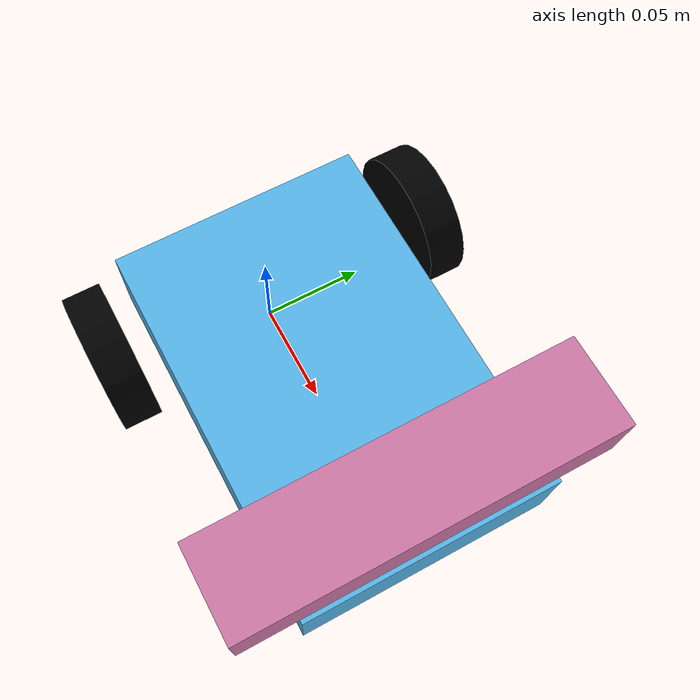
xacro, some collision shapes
<?xml version="1.0" ?>
<robot name="turtlebot3" xmlns:xacro="http://ros.org/wiki/xacro">

  <xacro:property name="astra_cam_px" value="0.13"/>
  <xacro:property name="astra_cam_py" value="0.008"/>
  <xacro:property name="astra_cam_pz" value="0.06"/>
  <xacro:property name="astra_depth_rel_rgb_py" value="0.0250" />
  <xacro:property name="astra_cam_rel_rgb_py"   value="-0.0125" />
  <xacro:property name="astra_dae_display_scale"   value="0.5" />
  <xacro:property name="M_PI" value="3.1415926535897931" />

  <material name="black">
    <color rgba="0.0 0.0 0.0 1.0"/>
  </material>
  <material name="orange">
    <color rgba="1.0 0.4 0.0 1.0"/>
  </material>

  <link name="base_footprint"/>

  <joint name="base_joint" type="fixed">
    <origin xyz="0 0 0.033" rpy="0 0 0"/>
    <parent link="base_footprint"/>
    <child link="base_link" />
  </joint>

  <link name="base_link">
    <visual>
      <origin xyz="0.06 0 0.007" rpy="0 0 0"/>
      <geometry>
        <box size="0.18 0.12 0.04"/>
      </geometry>
    </visual>
    <collision>
      <origin xyz="0.06 0 0.007" rpy="0 0 0"/>
      <geometry>
        <box size="0.18 0.12 0.08"/>
      </geometry>
    </collision>
    <inertial>
      <origin xyz="0.06 0 0.007" rpy="0 0 0"/>
      <mass value="1"/>
      <inertia ixx="0.01" ixy="0.0" ixz="0.0"
               iyy="0.01" iyz="0.0"
               izz="0.01" />
    </inertial>
  </link>

  <joint name="wheel_left_joint" type="continuous">
    <parent link="base_link"/>
    <child link="wheel_left_link"/>
    <origin xyz="0 0.08 0" rpy="-1.570796327 0 0"/>
    <axis xyz="0 0 1"/>
  </joint>

  <link name="wheel_left_link">
    <visual>
      <origin xyz="0 0 0" rpy="0 0 0"/>
      <geometry>
        <cylinder length="0.018" radius="0.033"/>
      </geometry>
      <material name="black"/>
    </visual>
    <collision>
      <origin rpy="0 0 0" xyz="0 0 0"/>
      <geometry>
        <cylinder length="0.018" radius="0.033"/>
      </geometry>
    </collision>
    <inertial>
      <origin xyz="0 0 0" />
      <mass value="0.01" />
      <inertia ixx="0.001" ixy="0.0" ixz="0.0"
               iyy="0.001" iyz="0.0"
               izz="0.001" />
    </inertial>
  </link>

  <joint name="wheel_right_joint" type="continuous">
    <parent link="base_link"/>
    <child link="wheel_right_link"/>
    <origin xyz="0 -0.08 0" rpy="-1.570796327 0 0"/>
    <axis xyz="0 0 1"/>
  </joint>

  <link name="wheel_right_link">
    <visual>
      <origin xyz="0 0 0" rpy="0 0 0"/>
      <geometry>
        <cylinder length="0.018" radius="0.033"/>
      </geometry>
      <material name="black"/>
    </visual>
    <collision>
      <origin rpy="0 0 0" xyz="0 0 0"/>
      <geometry>
        <cylinder length="0.018" radius="0.033"/>
      </geometry>
    </collision>
    <inertial>
      <origin xyz="0 0 0" />
      <mass value="0.01" />
      <inertia ixx="0.001" ixy="0.0" ixz="0.0"
               iyy="0.001" iyz="0.0"
               izz="0.001" />
    </inertial>
  </link>

  <joint name="camera_rgb_joint" type="fixed">
    <origin xyz="${astra_cam_px} ${astra_cam_py} ${astra_cam_pz}"
            rpy="0 0 0"/>
    <parent link="base_link"/>
    <child link="camera_rgb_frame" />
  </joint>
  <link name="camera_rgb_frame"/>

  <joint name="camera_rgb_optical_joint" type="fixed">
    <origin xyz="0 0 0" rpy="${-M_PI/2} 0 ${-M_PI/2}" />
    <parent link="camera_rgb_frame" />
    <child link="camera_rgb_optical_frame" />
  </joint>
  <link name="camera_rgb_optical_frame"/>

  <joint name="camera_joint" type="fixed">
    <origin xyz="0 ${astra_cam_rel_rgb_py} 0"
            rpy="0 0 0"/>
    <parent link="camera_rgb_frame"/>
    <child link="camera_link"/>
  </joint>
  <link name="camera_link">
    <visual>
      <origin xyz="0 0 0" rpy="${M_PI/2} 0 ${M_PI/2}"/>
      <geometry>
        <mesh filename="package://turtlebot3_description/meshes/sensors/astra.dae" scale="${astra_dae_display_scale} ${astra_dae_display_scale} ${astra_dae_display_scale}"/>
      </geometry>
    </visual>
    <collision>
      <origin xyz="0.0 0.0 0.0" rpy="0 0 0" />
      <geometry>
      <box size="0.0400 0.1650 0.0300"/>
    </geometry>
    </collision>
    <inertial>
      <mass value="0.564" />
      <origin xyz="0 0 0" />
      <inertia ixx="0.003881243" ixy="0.0" ixz="0.0"
               iyy="0.000498940" iyz="0.0"
               izz="0.003879257" />
    </inertial>
  </link>

  <joint name="camera_depth_joint" type="fixed">
    <origin xyz="0 ${astra_depth_rel_rgb_py} 0" rpy="0 0 0" />
    <parent link="camera_rgb_frame" />
    <child link="camera_depth_frame" />
  </joint>
  <link name="camera_depth_frame"/>

  <joint name="camera_depth_optical_joint" type="fixed">
    <origin xyz="0 0 0" rpy="${-M_PI/2} 0 ${-M_PI/2}" />
    <parent link="camera_depth_frame" />
    <child link="camera_depth_optical_frame" />
  </joint>
  <link name="camera_depth_optical_frame"/>

</robot>
